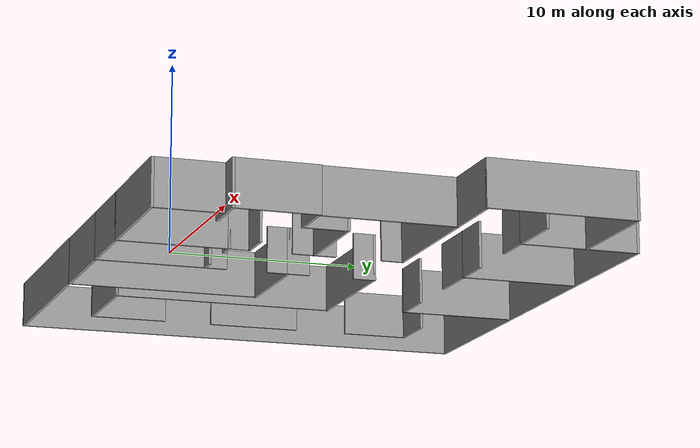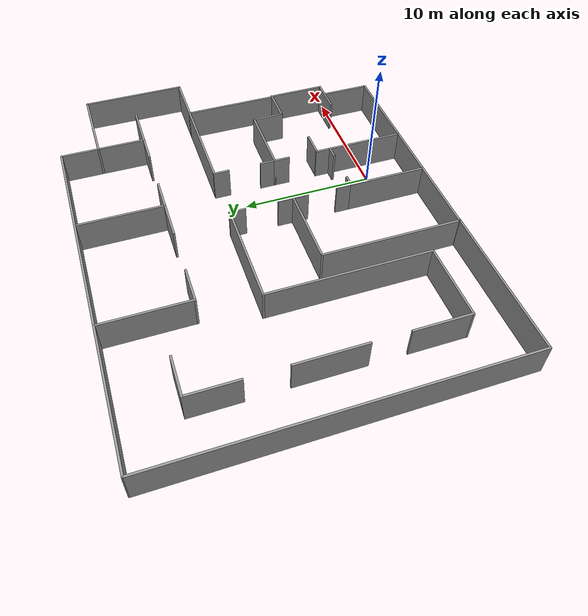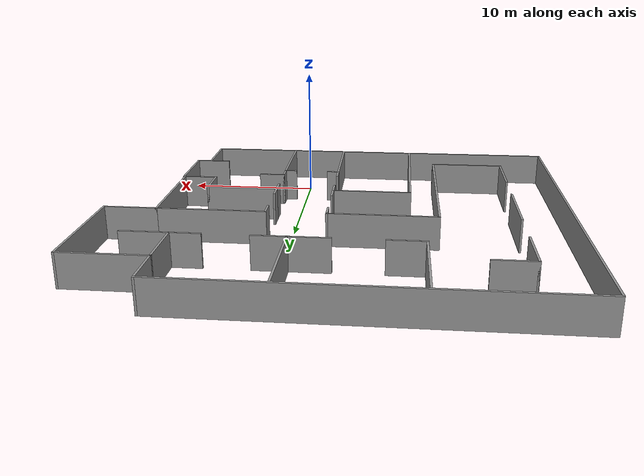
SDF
<?xml version='1.0'?>
<sdf version='1.7'>
  <model name='office_wide'>
    <pose>-3.18382 9.70649 0 0 -0 0</pose>
    <link name='Wall_102'>
      <collision name='Wall_102_Collision'>
        <geometry>
          <box>
            <size>3 0.15 2.5</size>
          </box>
        </geometry>
        <pose>0 0 1.25 0 -0 0</pose>
      </collision>
      <visual name='Wall_102_Visual'>
        <pose>0 0 1.25 0 -0 0</pose>
        <geometry>
          <box>
            <size>3 0.15 2.5</size>
          </box>
        </geometry>
        <material>
          <script>
            <uri>file://media/materials/scripts/gazebo.material</uri>
            <name>Gazebo/Grey</name>
          </script>
          <ambient>1 1 1 1</ambient>
        </material>
        <meta>
          <layer>0</layer>
        </meta>
      </visual>
      <pose>1.28882 6.51351 0 0 -0 3.14159</pose>
    </link>
    <link name='Wall_104'>
      <collision name='Wall_104_Collision'>
        <geometry>
          <box>
            <size>2.75 0.15 2.5</size>
          </box>
        </geometry>
        <pose>0 0 1.25 0 -0 0</pose>
      </collision>
      <visual name='Wall_104_Visual'>
        <pose>0 0 1.25 0 -0 0</pose>
        <geometry>
          <box>
            <size>2.75 0.15 2.5</size>
          </box>
        </geometry>
        <material>
          <script>
            <uri>file://media/materials/scripts/gazebo.material</uri>
            <name>Gazebo/Grey</name>
          </script>
          <ambient>1 1 1 1</ambient>
        </material>
        <meta>
          <layer>0</layer>
        </meta>
      </visual>
      <pose>-5.03618 6.51351 0 0 -0 3.14159</pose>
    </link>
    <link name='Wall_105'>
      <collision name='Wall_105_Collision'>
        <geometry>
          <box>
            <size>6.5 0.15 2.5</size>
          </box>
        </geometry>
        <pose>0 0 1.25 0 -0 0</pose>
      </collision>
      <visual name='Wall_105_Visual'>
        <pose>0 0 1.25 0 -0 0</pose>
        <geometry>
          <box>
            <size>6.5 0.15 2.5</size>
          </box>
        </geometry>
        <material>
          <script>
            <uri>file://media/materials/scripts/gazebo.material</uri>
            <name>Gazebo/Grey</name>
          </script>
          <ambient>1 1 1 1</ambient>
        </material>
        <meta>
          <layer>0</layer>
        </meta>
      </visual>
      <pose>-6.33618 9.68851 0 0 -0 1.5708</pose>
    </link>
    <link name='Wall_108'>
      <collision name='Wall_108_Collision'>
        <geometry>
          <box>
            <size>3.75 0.15 2.5</size>
          </box>
        </geometry>
        <pose>0 0 1.25 0 -0 0</pose>
      </collision>
      <visual name='Wall_108_Visual'>
        <pose>0 0 1.25 0 -0 0</pose>
        <geometry>
          <box>
            <size>3.75 0.15 2.5</size>
          </box>
        </geometry>
        <material>
          <script>
            <uri>file://media/materials/scripts/gazebo.material</uri>
            <name>Gazebo/Grey</name>
          </script>
          <ambient>1 1 1 1</ambient>
        </material>
        <meta>
          <layer>0</layer>
        </meta>
      </visual>
      <pose>-12.9013 7.12693 0 0 -0 1.5708</pose>
    </link>
    <link name='Wall_109'>
      <collision name='Wall_109_Collision'>
        <geometry>
          <box>
            <size>3 0.15 2.5</size>
          </box>
        </geometry>
        <pose>0 0 1.25 0 -0 0</pose>
      </collision>
      <visual name='Wall_109_Visual'>
        <pose>0 0 1.25 0 -0 0</pose>
        <geometry>
          <box>
            <size>3 0.15 2.5</size>
          </box>
        </geometry>
        <material>
          <script>
            <uri>file://media/materials/scripts/gazebo.material</uri>
            <name>Gazebo/Grey</name>
          </script>
          <ambient>1 1 1 1</ambient>
        </material>
        <meta>
          <layer>0</layer>
        </meta>
      </visual>
      <pose>-11.4763 8.92693 0 0 -0 0</pose>
    </link>
    <link name='Wall_11'>
      <collision name='Wall_11_Collision'>
        <geometry>
          <box>
            <size>1 0.15 2.5</size>
          </box>
        </geometry>
        <pose>0 0 1.25 0 -0 0</pose>
      </collision>
      <visual name='Wall_11_Visual'>
        <pose>0 0 1.25 0 -0 0</pose>
        <geometry>
          <box>
            <size>1 0.15 2.5</size>
          </box>
        </geometry>
        <material>
          <script>
            <uri>file://media/materials/scripts/gazebo.material</uri>
            <name>Gazebo/Grey</name>
          </script>
          <ambient>1 1 1 1</ambient>
        </material>
        <meta>
          <layer>0</layer>
        </meta>
      </visual>
      <pose>0.98882 -7.08649 0 0 -0 0</pose>
    </link>
    <link name='Wall_14'>
      <collision name='Wall_14_Collision'>
        <geometry>
          <box>
            <size>1.25 0.15 2.5</size>
          </box>
        </geometry>
        <pose>0 0 1.25 0 -0 0</pose>
      </collision>
      <visual name='Wall_14_Visual'>
        <pose>0 0 1.25 0 -0 0</pose>
        <geometry>
          <box>
            <size>1.25 0.15 2.5</size>
          </box>
        </geometry>
        <material>
          <script>
            <uri>file://media/materials/scripts/gazebo.material</uri>
            <name>Gazebo/Grey</name>
          </script>
          <ambient>1 1 1 1</ambient>
        </material>
        <meta>
          <layer>0</layer>
        </meta>
      </visual>
      <pose>0.56382 -6.53649 0 0 -0 1.5708</pose>
    </link>
    <link name='Wall_24'>
      <collision name='Wall_24_Collision'>
        <geometry>
          <box>
            <size>1.25 0.15 2.5</size>
          </box>
        </geometry>
        <pose>0 0 1.25 0 -0 0</pose>
      </collision>
      <visual name='Wall_24_Visual'>
        <pose>0 0 1.25 0 -0 0</pose>
        <geometry>
          <box>
            <size>1.25 0.15 2.5</size>
          </box>
        </geometry>
        <material>
          <script>
            <uri>file://media/materials/scripts/gazebo.material</uri>
            <name>Gazebo/Grey</name>
          </script>
          <ambient>1 1 1 1</ambient>
        </material>
        <meta>
          <layer>0</layer>
        </meta>
      </visual>
      <pose>0.56382 -3.08649 0 0 -0 1.5708</pose>
    </link>
    <link name='Wall_26'>
      <collision name='Wall_26_Collision'>
        <geometry>
          <box>
            <size>6.00864 0.15 2.5</size>
          </box>
        </geometry>
        <pose>0 0 1.25 0 -0 0</pose>
      </collision>
      <visual name='Wall_26_Visual'>
        <pose>0 0 1.25 0 -0 0</pose>
        <geometry>
          <box>
            <size>6.00864 0.15 2.5</size>
          </box>
        </geometry>
        <material>
          <script>
            <uri>file://media/materials/scripts/gazebo.material</uri>
            <name>Gazebo/Grey</name>
          </script>
          <ambient>1 1 1 1</ambient>
        </material>
        <meta>
          <layer>0</layer>
        </meta>
      </visual>
      <pose>-2.3655 -2.53649 0 0 -0 3.14159</pose>
    </link>
    <link name='Wall_29'>
      <collision name='Wall_29_Collision'>
        <geometry>
          <box>
            <size>6 0.15 2.5</size>
          </box>
        </geometry>
        <pose>0 0 1.25 0 -0 0</pose>
      </collision>
      <visual name='Wall_29_Visual'>
        <pose>0 0 1.25 0 -0 0</pose>
        <geometry>
          <box>
            <size>6 0.15 2.5</size>
          </box>
        </geometry>
        <material>
          <script>
            <uri>file://media/materials/scripts/gazebo.material</uri>
            <name>Gazebo/Grey</name>
          </script>
          <ambient>1 1 1 1</ambient>
        </material>
        <meta>
          <layer>0</layer>
        </meta>
      </visual>
      <pose>-2.36118 -12.9365 0 0 -0 3.14159</pose>
    </link>
    <link name='Wall_30'>
      <collision name='Wall_30_Collision'>
        <geometry>
          <box>
            <size>10.5 0.15 2.5</size>
          </box>
        </geometry>
        <pose>0 0 1.25 0 -0 0</pose>
      </collision>
      <visual name='Wall_30_Visual'>
        <pose>0 0 1.25 0 -0 0</pose>
        <geometry>
          <box>
            <size>10.5 0.15 2.5</size>
          </box>
        </geometry>
        <material>
          <script>
            <uri>file://media/materials/scripts/gazebo.material</uri>
            <name>Gazebo/Grey</name>
          </script>
          <ambient>1 1 1 1</ambient>
        </material>
        <meta>
          <layer>0</layer>
        </meta>
      </visual>
      <pose>-5.28618 -7.76149 0 0 -0 1.5708</pose>
    </link>
    <link name='Wall_32'>
      <collision name='Wall_32_Collision'>
        <geometry>
          <box>
            <size>1.25 0.15 2.5</size>
          </box>
        </geometry>
        <pose>0 0 1.25 0 -0 0</pose>
      </collision>
      <visual name='Wall_32_Visual'>
        <pose>0 0 1.25 0 -0 0</pose>
        <geometry>
          <box>
            <size>1.25 0.15 2.5</size>
          </box>
        </geometry>
        <material>
          <script>
            <uri>file://media/materials/scripts/gazebo.material</uri>
            <name>Gazebo/Grey</name>
          </script>
          <ambient>1 1 1 1</ambient>
        </material>
        <meta>
          <layer>0</layer>
        </meta>
      </visual>
      <pose>4.91382 -6.53649 0 0 -0 1.5708</pose>
    </link>
    <link name='Wall_33'>
      <collision name='Wall_33_Collision'>
        <geometry>
          <box>
            <size>2 0.15 2.5</size>
          </box>
        </geometry>
        <pose>0 0 1.25 0 -0 0</pose>
      </collision>
      <visual name='Wall_33_Visual'>
        <pose>0 0 1.25 0 -0 0</pose>
        <geometry>
          <box>
            <size>2 0.15 2.5</size>
          </box>
        </geometry>
        <material>
          <script>
            <uri>file://media/materials/scripts/gazebo.material</uri>
            <name>Gazebo/Grey</name>
          </script>
          <ambient>1 1 1 1</ambient>
        </material>
        <meta>
          <layer>0</layer>
        </meta>
      </visual>
      <pose>5.83882 -5.98649 0 0 -0 0</pose>
    </link>
    <link name='Wall_38'>
      <collision name='Wall_38_Collision'>
        <geometry>
          <box>
            <size>1.25 0.15 2.5</size>
          </box>
        </geometry>
        <pose>0 0 1.25 0 -0 0</pose>
      </collision>
      <visual name='Wall_38_Visual'>
        <pose>0 0 1.25 0 -0 0</pose>
        <geometry>
          <box>
            <size>1.25 0.15 2.5</size>
          </box>
        </geometry>
        <material>
          <script>
            <uri>file://media/materials/scripts/gazebo.material</uri>
            <name>Gazebo/Grey</name>
          </script>
          <ambient>1 1 1 1</ambient>
        </material>
        <meta>
          <layer>0</layer>
        </meta>
      </visual>
      <pose>4.91382 -3.08649 0 0 -0 1.5708</pose>
    </link>
    <link name='Wall_39'>
      <collision name='Wall_39_Collision'>
        <geometry>
          <box>
            <size>5.5 0.15 2.5</size>
          </box>
        </geometry>
        <pose>0 0 1.25 0 -0 0</pose>
      </collision>
      <visual name='Wall_39_Visual'>
        <pose>0 0 1.25 0 -0 0</pose>
        <geometry>
          <box>
            <size>5.5 0.15 2.5</size>
          </box>
        </geometry>
        <material>
          <script>
            <uri>file://media/materials/scripts/gazebo.material</uri>
            <name>Gazebo/Grey</name>
          </script>
          <ambient>1 1 1 1</ambient>
        </material>
        <meta>
          <layer>0</layer>
        </meta>
      </visual>
      <pose>7.58882 -2.53649 0 0 -0 0</pose>
    </link>
    <link name='Wall_40'>
      <collision name='Wall_40_Collision'>
        <geometry>
          <box>
            <size>2.5 0.15 2.5</size>
          </box>
        </geometry>
        <pose>0 0 1.25 0 -0 0</pose>
      </collision>
      <visual name='Wall_40_Visual'>
        <pose>0 0 1.25 0 -0 0</pose>
        <geometry>
          <box>
            <size>2.5 0.15 2.5</size>
          </box>
        </geometry>
        <material>
          <script>
            <uri>file://media/materials/scripts/gazebo.material</uri>
            <name>Gazebo/Grey</name>
          </script>
          <ambient>1 1 1 1</ambient>
        </material>
        <meta>
          <layer>0</layer>
        </meta>
      </visual>
      <pose>10.2638 -3.71149 0 0 -0 -1.5708</pose>
    </link>
    <link name='Wall_41'>
      <collision name='Wall_41_Collision'>
        <geometry>
          <box>
            <size>2.75 0.15 2.5</size>
          </box>
        </geometry>
        <pose>0 0 1.25 0 -0 0</pose>
      </collision>
      <visual name='Wall_41_Visual'>
        <pose>0 0 1.25 0 -0 0</pose>
        <geometry>
          <box>
            <size>2.75 0.15 2.5</size>
          </box>
        </geometry>
        <material>
          <script>
            <uri>file://media/materials/scripts/gazebo.material</uri>
            <name>Gazebo/Grey</name>
          </script>
          <ambient>1 1 1 1</ambient>
        </material>
        <meta>
          <layer>0</layer>
        </meta>
      </visual>
      <pose>11.5638 -4.88649 0 0 -0 0</pose>
    </link>
    <link name='Wall_42'>
      <collision name='Wall_42_Collision'>
        <geometry>
          <box>
            <size>4.5 0.15 2.5</size>
          </box>
        </geometry>
        <pose>0 0 1.25 0 -0 0</pose>
      </collision>
      <visual name='Wall_42_Visual'>
        <pose>0 0 1.25 0 -0 0</pose>
        <geometry>
          <box>
            <size>4.5 0.15 2.5</size>
          </box>
        </geometry>
        <material>
          <script>
            <uri>file://media/materials/scripts/gazebo.material</uri>
            <name>Gazebo/Grey</name>
          </script>
          <ambient>1 1 1 1</ambient>
        </material>
        <meta>
          <layer>0</layer>
        </meta>
      </visual>
      <pose>12.8638 -7.06149 0 0 -0 -1.5708</pose>
    </link>
    <link name='Wall_43'>
      <collision name='Wall_43_Collision'>
        <geometry>
          <box>
            <size>2.75 0.15 2.5</size>
          </box>
        </geometry>
        <pose>0 0 1.25 0 -0 0</pose>
      </collision>
      <visual name='Wall_43_Visual'>
        <pose>0 0 1.25 0 -0 0</pose>
        <geometry>
          <box>
            <size>2.75 0.15 2.5</size>
          </box>
        </geometry>
        <material>
          <script>
            <uri>file://media/materials/scripts/gazebo.material</uri>
            <name>Gazebo/Grey</name>
          </script>
          <ambient>1 1 1 1</ambient>
        </material>
        <meta>
          <layer>0</layer>
        </meta>
      </visual>
      <pose>11.5638 -9.23649 0 0 -0 3.14159</pose>
    </link>
    <link name='Wall_48'>
      <collision name='Wall_48_Collision'>
        <geometry>
          <box>
            <size>4.5 0.15 2.5</size>
          </box>
        </geometry>
        <pose>0 0 1.25 0 -0 0</pose>
      </collision>
      <visual name='Wall_48_Visual'>
        <pose>0 0 1.25 0 -0 0</pose>
        <geometry>
          <box>
            <size>4.5 0.15 2.5</size>
          </box>
        </geometry>
        <material>
          <script>
            <uri>file://media/materials/scripts/gazebo.material</uri>
            <name>Gazebo/Grey</name>
          </script>
          <ambient>1 1 1 1</ambient>
        </material>
        <meta>
          <layer>0</layer>
        </meta>
      </visual>
      <pose>2.73882 -12.9365 0 0 -0 0</pose>
    </link>
    <link name='Wall_49'>
      <collision name='Wall_49_Collision'>
        <geometry>
          <box>
            <size>6 0.15 2.5</size>
          </box>
        </geometry>
        <pose>0 0 1.25 0 -0 0</pose>
      </collision>
      <visual name='Wall_49_Visual'>
        <pose>0 0 1.25 0 -0 0</pose>
        <geometry>
          <box>
            <size>6 0.15 2.5</size>
          </box>
        </geometry>
        <material>
          <script>
            <uri>file://media/materials/scripts/gazebo.material</uri>
            <name>Gazebo/Grey</name>
          </script>
          <ambient>1 1 1 1</ambient>
        </material>
        <meta>
          <layer>0</layer>
        </meta>
      </visual>
      <pose>4.91382 -10.0115 0 0 -0 1.5708</pose>
    </link>
    <link name='Wall_53'>
      <collision name='Wall_53_Collision'>
        <geometry>
          <box>
            <size>7 0.15 2.5</size>
          </box>
        </geometry>
        <pose>0 0 1.25 0 -0 0</pose>
      </collision>
      <visual name='Wall_53_Visual'>
        <pose>0 0 1.25 0 -0 0</pose>
        <geometry>
          <box>
            <size>7 0.15 2.5</size>
          </box>
        </geometry>
        <material>
          <script>
            <uri>file://media/materials/scripts/gazebo.material</uri>
            <name>Gazebo/Grey</name>
          </script>
          <ambient>1 1 1 1</ambient>
        </material>
        <meta>
          <layer>0</layer>
        </meta>
      </visual>
      <pose>8.33882 -12.9365 0 0 -0 0</pose>
    </link>
    <link name='Wall_54'>
      <collision name='Wall_54_Collision'>
        <geometry>
          <box>
            <size>3.75 0.15 2.5</size>
          </box>
        </geometry>
        <pose>0 0 1.25 0 -0 0</pose>
      </collision>
      <visual name='Wall_54_Visual'>
        <pose>0 0 1.25 0 -0 0</pose>
        <geometry>
          <box>
            <size>3.75 0.15 2.5</size>
          </box>
        </geometry>
        <material>
          <script>
            <uri>file://media/materials/scripts/gazebo.material</uri>
            <name>Gazebo/Grey</name>
          </script>
          <ambient>1 1 1 1</ambient>
        </material>
        <meta>
          <layer>0</layer>
        </meta>
      </visual>
      <pose>11.7638 -11.1365 0 0 -0 1.5708</pose>
    </link>
    <link name='Wall_57'>
      <collision name='Wall_57_Collision'>
        <geometry>
          <box>
            <size>1.25 0.15 2.5</size>
          </box>
        </geometry>
        <pose>0 0 1.25 0 -0 0</pose>
      </collision>
      <visual name='Wall_57_Visual'>
        <pose>0 0 1.25 0 -0 0</pose>
        <geometry>
          <box>
            <size>1.25 0.15 2.5</size>
          </box>
        </geometry>
        <material>
          <script>
            <uri>file://media/materials/scripts/gazebo.material</uri>
            <name>Gazebo/Grey</name>
          </script>
          <ambient>1 1 1 1</ambient>
        </material>
        <meta>
          <layer>0</layer>
        </meta>
      </visual>
      <pose>0.56382 -1.98649 0 0 -0 1.5708</pose>
    </link>
    <link name='Wall_6'>
      <collision name='Wall_6_Collision'>
        <geometry>
          <box>
            <size>1 0.15 2.5</size>
          </box>
        </geometry>
        <pose>0 0 1.25 0 -0 0</pose>
      </collision>
      <visual name='Wall_6_Visual'>
        <pose>0 0 1.25 0 -0 0</pose>
        <geometry>
          <box>
            <size>1 0.15 2.5</size>
          </box>
        </geometry>
        <material>
          <script>
            <uri>file://media/materials/scripts/gazebo.material</uri>
            <name>Gazebo/Grey</name>
          </script>
          <ambient>1 1 1 1</ambient>
        </material>
        <meta>
          <layer>0</layer>
        </meta>
      </visual>
      <pose>4.48882 -7.08649 0 0 -0 3.14159</pose>
    </link>
    <link name='Wall_63'>
      <collision name='Wall_63_Collision'>
        <geometry>
          <box>
            <size>1.25 0.15 2.5</size>
          </box>
        </geometry>
        <pose>0 0 1.25 0 -0 0</pose>
      </collision>
      <visual name='Wall_63_Visual'>
        <pose>0 0 1.25 0 -0 0</pose>
        <geometry>
          <box>
            <size>1.25 0.15 2.5</size>
          </box>
        </geometry>
        <material>
          <script>
            <uri>file://media/materials/scripts/gazebo.material</uri>
            <name>Gazebo/Grey</name>
          </script>
          <ambient>1 1 1 1</ambient>
        </material>
        <meta>
          <layer>0</layer>
        </meta>
      </visual>
      <pose>0.56382 1.71351 0 0 -0 1.5708</pose>
    </link>
    <link name='Wall_65'>
      <collision name='Wall_65_Collision'>
        <geometry>
          <box>
            <size>8 0.15 2.5</size>
          </box>
        </geometry>
        <pose>0 0 1.25 0 -0 0</pose>
      </collision>
      <visual name='Wall_65_Visual'>
        <pose>0 0 1.25 0 -0 0</pose>
        <geometry>
          <box>
            <size>8 0.15 2.5</size>
          </box>
        </geometry>
        <material>
          <script>
            <uri>file://media/materials/scripts/gazebo.material</uri>
            <name>Gazebo/Grey</name>
          </script>
          <ambient>1 1 1 1</ambient>
        </material>
        <meta>
          <layer>0</layer>
        </meta>
      </visual>
      <pose>-3.36118 2.26351 0 0 -0 3.14159</pose>
    </link>
    <link name='Wall_66'>
      <collision name='Wall_66_Collision'>
        <geometry>
          <box>
            <size>12.25 0.15 2.5</size>
          </box>
        </geometry>
        <pose>0 0 1.25 0 -0 0</pose>
      </collision>
      <visual name='Wall_66_Visual'>
        <pose>0 0 1.25 0 -0 0</pose>
        <geometry>
          <box>
            <size>12.25 0.15 2.5</size>
          </box>
        </geometry>
        <material>
          <script>
            <uri>file://media/materials/scripts/gazebo.material</uri>
            <name>Gazebo/Grey</name>
          </script>
          <ambient>1 1 1 1</ambient>
        </material>
        <meta>
          <layer>0</layer>
        </meta>
      </visual>
      <pose>-7.28618 -3.78649 0 0 -0 -1.5708</pose>
    </link>
    <link name='Wall_67'>
      <collision name='Wall_67_Collision'>
        <geometry>
          <box>
            <size>5.75 0.15 2.5</size>
          </box>
        </geometry>
        <pose>0 0 1.25 0 -0 0</pose>
      </collision>
      <visual name='Wall_67_Visual'>
        <pose>0 0 1.25 0 -0 0</pose>
        <geometry>
          <box>
            <size>5.75 0.15 2.5</size>
          </box>
        </geometry>
        <material>
          <script>
            <uri>file://media/materials/scripts/gazebo.material</uri>
            <name>Gazebo/Grey</name>
          </script>
          <ambient>1 1 1 1</ambient>
        </material>
        <meta>
          <layer>0</layer>
        </meta>
      </visual>
      <pose>-10.0862 -9.83649 0 0 -0 3.14159</pose>
    </link>
    <link name='Wall_68'>
      <collision name='Wall_68_Collision'>
        <geometry>
          <box>
            <size>4.31996 0.15 2.5</size>
          </box>
        </geometry>
        <pose>0 0 1.25 0 -0 0</pose>
      </collision>
      <visual name='Wall_68_Visual'>
        <pose>0 0 1.25 0 -0 0</pose>
        <geometry>
          <box>
            <size>4.31996 0.15 2.5</size>
          </box>
        </geometry>
        <material>
          <script>
            <uri>file://media/materials/scripts/gazebo.material</uri>
            <name>Gazebo/Grey</name>
          </script>
          <ambient>1 1 1 1</ambient>
        </material>
        <meta>
          <layer>0</layer>
        </meta>
      </visual>
      <pose>-12.8862 -7.75151 0 0 -0 1.5708</pose>
    </link>
    <link name='Wall_70'>
      <collision name='Wall_70_Collision'>
        <geometry>
          <box>
            <size>5.18004 0.15 2.5</size>
          </box>
        </geometry>
        <pose>0 0 1.25 0 -0 0</pose>
      </collision>
      <visual name='Wall_70_Visual'>
        <pose>0 0 1.25 0 -0 0</pose>
        <geometry>
          <box>
            <size>5.18004 0.15 2.5</size>
          </box>
        </geometry>
        <material>
          <script>
            <uri>file://media/materials/scripts/gazebo.material</uri>
            <name>Gazebo/Grey</name>
          </script>
          <ambient>1 1 1 1</ambient>
        </material>
        <meta>
          <layer>0</layer>
        </meta>
      </visual>
      <pose>-12.8862 -0.301512 0 0 -0 1.5708</pose>
    </link>
    <link name='Wall_72'>
      <collision name='Wall_72_Collision'>
        <geometry>
          <box>
            <size>26 0.15 2.5</size>
          </box>
        </geometry>
        <pose>0 0 1.25 0 -0 0</pose>
      </collision>
      <visual name='Wall_72_Visual'>
        <pose>0 0 1.25 0 -0 0</pose>
        <geometry>
          <box>
            <size>26 0.15 2.5</size>
          </box>
        </geometry>
        <material>
          <script>
            <uri>file://media/materials/scripts/gazebo.material</uri>
            <name>Gazebo/Grey</name>
          </script>
          <ambient>1 1 1 1</ambient>
        </material>
        <meta>
          <layer>0</layer>
        </meta>
      </visual>
      <pose>-16.6138 -0.038507 0 0 -0 -1.5708</pose>
    </link>
    <link name='Wall_73'>
      <collision name='Wall_73_Collision'>
        <geometry>
          <box>
            <size>11.5 0.15 2.5</size>
          </box>
        </geometry>
        <pose>0 0 1.25 0 -0 0</pose>
      </collision>
      <visual name='Wall_73_Visual'>
        <pose>0 0 1.25 0 -0 0</pose>
        <geometry>
          <box>
            <size>11.5 0.15 2.5</size>
          </box>
        </geometry>
        <material>
          <script>
            <uri>file://media/materials/scripts/gazebo.material</uri>
            <name>Gazebo/Grey</name>
          </script>
          <ambient>1 1 1 1</ambient>
        </material>
        <meta>
          <layer>0</layer>
        </meta>
      </visual>
      <pose>-10.9388 -12.9635 0 0 -0 0</pose>
    </link>
    <link name='Wall_77'>
      <collision name='Wall_77_Collision'>
        <geometry>
          <box>
            <size>1.25 0.15 2.5</size>
          </box>
        </geometry>
        <pose>0 0 1.25 0 -0 0</pose>
      </collision>
      <visual name='Wall_77_Visual'>
        <pose>0 0 1.25 0 -0 0</pose>
        <geometry>
          <box>
            <size>1.25 0.15 2.5</size>
          </box>
        </geometry>
        <material>
          <script>
            <uri>file://media/materials/scripts/gazebo.material</uri>
            <name>Gazebo/Grey</name>
          </script>
          <ambient>1 1 1 1</ambient>
        </material>
        <meta>
          <layer>0</layer>
        </meta>
      </visual>
      <pose>4.91382 -1.98649 0 0 -0 1.5708</pose>
    </link>
    <link name='Wall_8'>
      <collision name='Wall_8_Collision'>
        <geometry>
          <box>
            <size>6 0.15 2.5</size>
          </box>
        </geometry>
        <pose>0 0 1.25 0 -0 0</pose>
      </collision>
      <visual name='Wall_8_Visual'>
        <pose>0 0 1.25 0 -0 0</pose>
        <geometry>
          <box>
            <size>6 0.15 2.5</size>
          </box>
        </geometry>
        <material>
          <script>
            <uri>file://media/materials/scripts/gazebo.material</uri>
            <name>Gazebo/Grey</name>
          </script>
          <ambient>1 1 1 1</ambient>
        </material>
        <meta>
          <layer>0</layer>
        </meta>
      </visual>
      <pose>0.56382 -10.0115 0 0 -0 1.5708</pose>
    </link>
    <link name='Wall_80'>
      <collision name='Wall_80_Collision'>
        <geometry>
          <box>
            <size>1.25 0.15 2.5</size>
          </box>
        </geometry>
        <pose>0 0 1.25 0 -0 0</pose>
      </collision>
      <visual name='Wall_80_Visual'>
        <pose>0 0 1.25 0 -0 0</pose>
        <geometry>
          <box>
            <size>1.25 0.15 2.5</size>
          </box>
        </geometry>
        <material>
          <script>
            <uri>file://media/materials/scripts/gazebo.material</uri>
            <name>Gazebo/Grey</name>
          </script>
          <ambient>1 1 1 1</ambient>
        </material>
        <meta>
          <layer>0</layer>
        </meta>
      </visual>
      <pose>4.91382 1.71351 0 0 -0 1.5708</pose>
    </link>
    <link name='Wall_81'>
      <collision name='Wall_81_Collision'>
        <geometry>
          <box>
            <size>8 0.15 2.5</size>
          </box>
        </geometry>
        <pose>0 0 1.25 0 -0 0</pose>
      </collision>
      <visual name='Wall_81_Visual'>
        <pose>0 0 1.25 0 -0 0</pose>
        <geometry>
          <box>
            <size>8 0.15 2.5</size>
          </box>
        </geometry>
        <material>
          <script>
            <uri>file://media/materials/scripts/gazebo.material</uri>
            <name>Gazebo/Grey</name>
          </script>
          <ambient>1 1 1 1</ambient>
        </material>
        <meta>
          <layer>0</layer>
        </meta>
      </visual>
      <pose>8.83882 2.26351 0 0 -0 0</pose>
    </link>
    <link name='Wall_82'>
      <collision name='Wall_82_Collision'>
        <geometry>
          <box>
            <size>7.25 0.15 2.5</size>
          </box>
        </geometry>
        <pose>0 0 1.25 0 -0 0</pose>
      </collision>
      <visual name='Wall_82_Visual'>
        <pose>0 0 1.25 0 -0 0</pose>
        <geometry>
          <box>
            <size>7.25 0.15 2.5</size>
          </box>
        </geometry>
        <material>
          <script>
            <uri>file://media/materials/scripts/gazebo.material</uri>
            <name>Gazebo/Grey</name>
          </script>
          <ambient>1 1 1 1</ambient>
        </material>
        <meta>
          <layer>0</layer>
        </meta>
      </visual>
      <pose>12.7638 -1.28649 0 0 -0 -1.5708</pose>
    </link>
    <link name='Wall_84'>
      <collision name='Wall_84_Collision'>
        <geometry>
          <box>
            <size>4 0.15 2.5</size>
          </box>
        </geometry>
        <pose>0 0 1.25 0 -0 0</pose>
      </collision>
      <visual name='Wall_84_Visual'>
        <pose>0 0 1.25 0 -0 0</pose>
        <geometry>
          <box>
            <size>4 0.15 2.5</size>
          </box>
        </geometry>
        <material>
          <script>
            <uri>file://media/materials/scripts/gazebo.material</uri>
            <name>Gazebo/Grey</name>
          </script>
          <ambient>1 1 1 1</ambient>
        </material>
        <meta>
          <layer>0</layer>
        </meta>
      </visual>
      <pose>14.6888 2.26351 0 0 -0 0</pose>
    </link>
    <link name='Wall_85'>
      <collision name='Wall_85_Collision'>
        <geometry>
          <box>
            <size>8 0.15 2.5</size>
          </box>
        </geometry>
        <pose>0 0 1.25 0 -0 0</pose>
      </collision>
      <visual name='Wall_85_Visual'>
        <pose>0 0 1.25 0 -0 0</pose>
        <geometry>
          <box>
            <size>8 0.15 2.5</size>
          </box>
        </geometry>
        <material>
          <script>
            <uri>file://media/materials/scripts/gazebo.material</uri>
            <name>Gazebo/Grey</name>
          </script>
          <ambient>1 1 1 1</ambient>
        </material>
        <meta>
          <layer>0</layer>
        </meta>
      </visual>
      <pose>16.6138 6.18851 0 0 -0 1.5708</pose>
    </link>
    <link name='Wall_86'>
      <collision name='Wall_86_Collision'>
        <geometry>
          <box>
            <size>6.25 0.15 2.5</size>
          </box>
        </geometry>
        <pose>0 0 1.25 0 -0 0</pose>
      </collision>
      <visual name='Wall_86_Visual'>
        <pose>0 0 1.25 0 -0 0</pose>
        <geometry>
          <box>
            <size>6.25 0.15 2.5</size>
          </box>
        </geometry>
        <material>
          <script>
            <uri>file://media/materials/scripts/gazebo.material</uri>
            <name>Gazebo/Grey</name>
          </script>
          <ambient>1 1 1 1</ambient>
        </material>
        <meta>
          <layer>0</layer>
        </meta>
      </visual>
      <pose>13.5638 10.1135 0 0 -0 3.14159</pose>
    </link>
    <link name='Wall_87'>
      <collision name='Wall_87_Collision'>
        <geometry>
          <box>
            <size>3.75 0.15 2.5</size>
          </box>
        </geometry>
        <pose>0 0 1.25 0 -0 0</pose>
      </collision>
      <visual name='Wall_87_Visual'>
        <pose>0 0 1.25 0 -0 0</pose>
        <geometry>
          <box>
            <size>3.75 0.15 2.5</size>
          </box>
        </geometry>
        <material>
          <script>
            <uri>file://media/materials/scripts/gazebo.material</uri>
            <name>Gazebo/Grey</name>
          </script>
          <ambient>1 1 1 1</ambient>
        </material>
        <meta>
          <layer>0</layer>
        </meta>
      </visual>
      <pose>10.5138 8.31351 0 0 -0 -1.5708</pose>
    </link>
    <link name='Wall_88'>
      <collision name='Wall_88_Collision'>
        <geometry>
          <box>
            <size>3.5 0.15 2.5</size>
          </box>
        </geometry>
        <pose>0 0 1.25 0 -0 0</pose>
      </collision>
      <visual name='Wall_88_Visual'>
        <pose>0 0 1.25 0 -0 0</pose>
        <geometry>
          <box>
            <size>3.5 0.15 2.5</size>
          </box>
        </geometry>
        <material>
          <script>
            <uri>file://media/materials/scripts/gazebo.material</uri>
            <name>Gazebo/Grey</name>
          </script>
          <ambient>1 1 1 1</ambient>
        </material>
        <meta>
          <layer>0</layer>
        </meta>
      </visual>
      <pose>12.1888 6.51351 0 0 -0 0</pose>
    </link>
    <link name='Wall_90'>
      <collision name='Wall_90_Collision'>
        <geometry>
          <box>
            <size>3 0.15 2.5</size>
          </box>
        </geometry>
        <pose>0 0 1.25 0 -0 0</pose>
      </collision>
      <visual name='Wall_90_Visual'>
        <pose>0 0 1.25 0 -0 0</pose>
        <geometry>
          <box>
            <size>3 0.15 2.5</size>
          </box>
        </geometry>
        <material>
          <script>
            <uri>file://media/materials/scripts/gazebo.material</uri>
            <name>Gazebo/Grey</name>
          </script>
          <ambient>1 1 1 1</ambient>
        </material>
        <meta>
          <layer>0</layer>
        </meta>
      </visual>
      <pose>10.5138 11.5385 0 0 -0 1.5708</pose>
    </link>
    <link name='Wall_91'>
      <collision name='Wall_91_Collision'>
        <geometry>
          <box>
            <size>27.25 0.15 2.5</size>
          </box>
        </geometry>
        <pose>0 0 1.25 0 -0 0</pose>
      </collision>
      <visual name='Wall_91_Visual'>
        <pose>0 0 1.25 0 -0 0</pose>
        <geometry>
          <box>
            <size>27.25 0.15 2.5</size>
          </box>
        </geometry>
        <material>
          <script>
            <uri>file://media/materials/scripts/gazebo.material</uri>
            <name>Gazebo/Grey</name>
          </script>
          <ambient>1 1 1 1</ambient>
        </material>
        <meta>
          <layer>0</layer>
        </meta>
      </visual>
      <pose>-3.03618 12.9635 0 0 -0 3.14159</pose>
    </link>
    <link name='Wall_93'>
      <collision name='Wall_93_Collision'>
        <geometry>
          <box>
            <size>2.25 0.15 2.5</size>
          </box>
        </geometry>
        <pose>0 0 1.25 0 -0 0</pose>
      </collision>
      <visual name='Wall_93_Visual'>
        <pose>0 0 1.25 0 -0 0</pose>
        <geometry>
          <box>
            <size>2.25 0.15 2.5</size>
          </box>
        </geometry>
        <material>
          <script>
            <uri>file://media/materials/scripts/gazebo.material</uri>
            <name>Gazebo/Grey</name>
          </script>
          <ambient>1 1 1 1</ambient>
        </material>
        <meta>
          <layer>0</layer>
        </meta>
      </visual>
      <pose>9.46382 6.51351 0 0 -0 3.14159</pose>
    </link>
    <link name='Wall_95'>
      <collision name='Wall_95_Collision'>
        <geometry>
          <box>
            <size>2.5 0.15 2.5</size>
          </box>
        </geometry>
        <pose>0 0 1.25 0 -0 0</pose>
      </collision>
      <visual name='Wall_95_Visual'>
        <pose>0 0 1.25 0 -0 0</pose>
        <geometry>
          <box>
            <size>2.5 0.15 2.5</size>
          </box>
        </geometry>
        <material>
          <script>
            <uri>file://media/materials/scripts/gazebo.material</uri>
            <name>Gazebo/Grey</name>
          </script>
          <ambient>1 1 1 1</ambient>
        </material>
        <meta>
          <layer>0</layer>
        </meta>
      </visual>
      <pose>3.88882 6.51351 0 0 -0 3.14159</pose>
    </link>
    <link name='Wall_96'>
      <collision name='Wall_96_Collision'>
        <geometry>
          <box>
            <size>6.5 0.15 2.5</size>
          </box>
        </geometry>
        <pose>0 0 1.25 0 -0 0</pose>
      </collision>
      <visual name='Wall_96_Visual'>
        <pose>0 0 1.25 0 -0 0</pose>
        <geometry>
          <box>
            <size>6.5 0.15 2.5</size>
          </box>
        </geometry>
        <material>
          <script>
            <uri>file://media/materials/scripts/gazebo.material</uri>
            <name>Gazebo/Grey</name>
          </script>
          <ambient>1 1 1 1</ambient>
        </material>
        <meta>
          <layer>0</layer>
        </meta>
      </visual>
      <pose>2.71382 9.68851 0 0 -0 1.5708</pose>
    </link>
    <static>1</static>
  </model>
</sdf>
